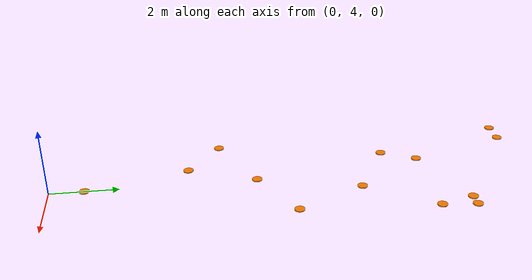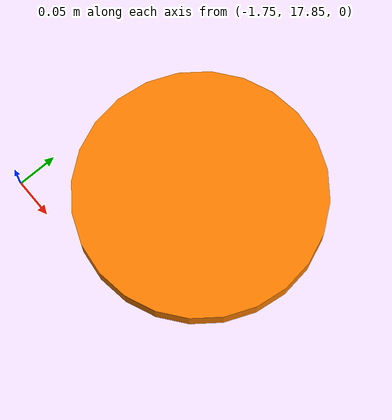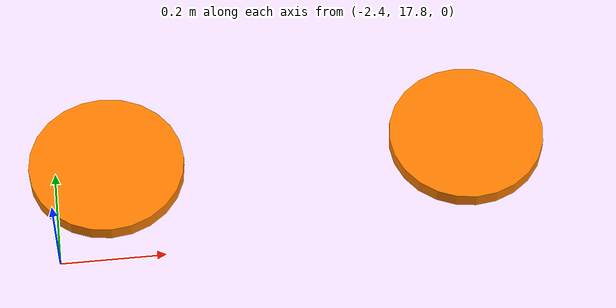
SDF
<sdf version="1.9">
 <world name="iris_runway">
  <physics name="1ms" type="ignore">
   <max_step_size>0.001</max_step_size>
   <real_time_factor>1.0</real_time_factor>
  </physics>
  <plugin filename="gz-sim-physics-system" name="gz::sim::systems::Physics"/>
  <plugin filename="gz-sim-sensors-system" name="gz::sim::systems::Sensors">
   <render_engine>ogre2</render_engine>
  </plugin>
  <plugin filename="gz-sim-user-commands-system" name="gz::sim::systems::UserCommands"/>
  <plugin filename="gz-sim-scene-broadcaster-system" name="gz::sim::systems::SceneBroadcaster"/>
  <plugin filename="gz-sim-imu-system" name="gz::sim::systems::Imu"/>
  <plugin filename="gz-sim-navsat-system" name="gz::sim::systems::NavSat"/>
  <scene><ambient>1.0 1.0 1.0</ambient><background>0.8 0.8 0.8</background></scene>
  <spherical_coordinates>
   <latitude_deg>-35.363262</latitude_deg>
   <longitude_deg>149.165237</longitude_deg>
   <elevation>584</elevation>
   <heading_deg>0</heading_deg>
   <surface_model>EARTH_WGS84</surface_model>
  </spherical_coordinates>
  <light type="directional" name="sun">
   <pose>0 0 10 0 0 0</pose>
   <diffuse>0.8 0.8 0.8 1</diffuse>
   <specular>0.8 0.8 0.8 1</specular>
   <attenuation>
    <range>1000</range>
    <constant>0.9</constant>
    <linear>0.01</linear>
    <quadratic>0.001</quadratic>
   </attenuation>
   <direction>-0.5 0.1 -0.9</direction>
  </light>
  <model name="plastic_mine_1">
   <pose>0 5 0.01 0 0 0</pose>
   <static>true</static>
   <link name="link">
    <visual name="visual">
     <geometry><cylinder><radius>0.15</radius><length>0.03</length></cylinder></geometry>
     <material><ambient>1.0 0.5 0.0 1</ambient><diffuse>1.0 0.5 0.0 1</diffuse></material>
    </visual>
   </link>
  </model>
  <model name="plastic_mine_2">
   <pose>0.8 13 0.01 0 0 0</pose>
   <static>true</static>
   <link name="link">
    <visual name="visual">
     <geometry><cylinder><radius>0.15</radius><length>0.03</length></cylinder></geometry>
     <material><ambient>1.0 0.5 0.0 1</ambient><diffuse>1.0 0.5 0.0 1</diffuse></material>
    </visual>
   </link>
  </model>
  <model name="plastic_mine_3">
   <pose>-0.6 15 0.01 0 0 0</pose>
   <static>true</static>
   <link name="link">
    <visual name="visual">
     <geometry><cylinder><radius>0.15</radius><length>0.03</length></cylinder></geometry>
     <material><ambient>1.0 0.5 0.0 1</ambient><diffuse>1.0 0.5 0.0 1</diffuse></material>
    </visual>
   </link>
  </model>
  <model name="plastic_mine_4">
   <pose>1.8 11 0.01 0 0 0</pose>
   <static>true</static>
   <link name="link">
    <visual name="visual">
     <geometry><cylinder><radius>0.15</radius><length>0.03</length></cylinder></geometry>
     <material><ambient>1.0 0.5 0.0 1</ambient><diffuse>1.0 0.5 0.0 1</diffuse></material>
    </visual>
   </link>
  </model>
  <model name="plastic_mine_5">
   <pose>-0.8 8 0.01 0 0 0</pose>
   <static>true</static>
   <link name="link">
    <visual name="visual">
     <geometry><cylinder><radius>0.15</radius><length>0.03</length></cylinder></geometry>
     <material><ambient>1.0 0.5 0.0 1</ambient><diffuse>1.0 0.5 0.0 1</diffuse></material>
    </visual>
   </link>
  </model>
  <model name="plastic_mine_6">
   <pose>-1.6 18 0.01 0 0 0</pose>
   <static>true</static>
   <link name="link">
    <visual name="visual">
     <geometry><cylinder><radius>0.15</radius><length>0.03</length></cylinder></geometry>
     <material><ambient>1.0 0.5 0.0 1</ambient><diffuse>1.0 0.5 0.0 1</diffuse></material>
    </visual>
   </link>
  </model>
  <model name="plastic_mine_7">
   <pose>2.1 15 0.01 0 0 0</pose>
   <static>true</static>
   <link name="link">
    <visual name="visual">
     <geometry><cylinder><radius>0.15</radius><length>0.03</length></cylinder></geometry>
     <material><ambient>1.0 0.5 0.0 1</ambient><diffuse>1.0 0.5 0.0 1</diffuse></material>
    </visual>
   </link>
  </model>
  <model name="plastic_mine_8">
   <pose>0 10 0.01 0 0 0</pose>
   <static>true</static>
   <link name="link">
    <visual name="visual">
     <geometry><cylinder><radius>0.15</radius><length>0.03</length></cylinder></geometry>
     <material><ambient>1.0 0.5 0.0 1</ambient><diffuse>1.0 0.5 0.0 1</diffuse></material>
    </visual>
   </link>
  </model>
  <model name="plastic_mine_9">
   <pose>-2.1 9 0.01 0 0 0</pose>
   <static>true</static>
   <link name="link">
    <visual name="visual">
     <geometry><cylinder><radius>0.15</radius><length>0.03</length></cylinder></geometry>
     <material><ambient>1.0 0.5 0.0 1</ambient><diffuse>1.0 0.5 0.0 1</diffuse></material>
    </visual>
   </link>
  </model>
  <model name="plastic_mine_10">
   <pose>2.2 16 0.01 0 0 0</pose>
   <static>true</static>
   <link name="link">
    <visual name="visual">
     <geometry><cylinder><radius>0.15</radius><length>0.03</length></cylinder></geometry>
     <material><ambient>1.0 0.5 0.0 1</ambient><diffuse>1.0 0.5 0.0 1</diffuse></material>
    </visual>
   </link>
  </model>
  <model name="plastic_mine_11">
   <pose>-1.1 14 0.01 0 0 0</pose>
   <static>true</static>
   <link name="link">
    <visual name="visual">
     <geometry><cylinder><radius>0.15</radius><length>0.03</length></cylinder></geometry>
     <material><ambient>1.0 0.5 0.0 1</ambient><diffuse>1.0 0.5 0.0 1</diffuse></material>
    </visual>
   </link>
  </model>
  <model name="plastic_mine_12">
   <pose>-2.3 18 0.01 0 0 0</pose>
   <static>true</static>
   <link name="link">
    <visual name="visual">
     <geometry><cylinder><radius>0.15</radius><length>0.03</length></cylinder></geometry>
     <material><ambient>1.0 0.5 0.0 1</ambient><diffuse>1.0 0.5 0.0 1</diffuse></material>
    </visual>
   </link>
  </model>
  <model name="plastic_mine_13">
   <pose>1.8 16 0.01 0 0 0</pose>
   <static>true</static>
   <link name="link">
    <visual name="visual">
     <geometry><cylinder><radius>0.15</radius><length>0.03</length></cylinder></geometry>
     <material><ambient>1.0 0.5 0.0 1</ambient><diffuse>1.0 0.5 0.0 1</diffuse></material>
    </visual>
   </link>
  </model>
 </world>
</sdf>
